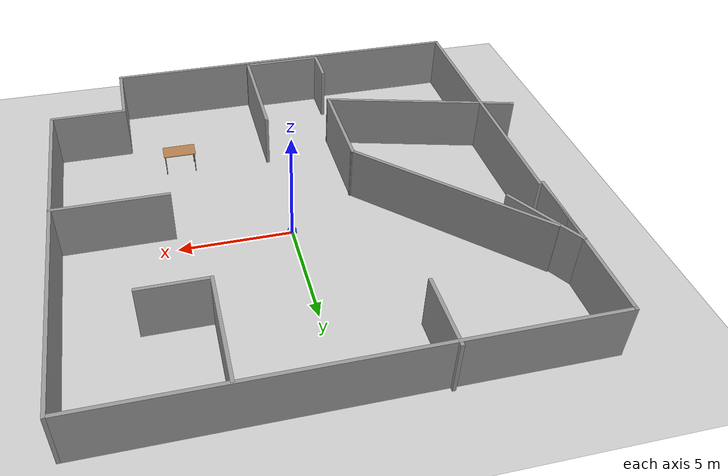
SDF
<sdf version="1.6">
 <world name="default">
  <light name="sun" type="directional">
   <pose>0 0 10 0 -0 0</pose>
   <diffuse>0.8 0.8 0.8 1</diffuse>
   <specular>0.2 0.2 0.2 1</specular>
   <attenuation>
    <range>1000</range>
    <constant>0.9</constant>
    <linear>0.01</linear>
    <quadratic>0.001</quadratic>
   </attenuation>
   <direction>-0.5 0.1 -0.9</direction>
  </light>
  <model name="ground_plane">
   <static>1</static>
   <link name="link">
    <collision name="collision">
     <geometry><plane><normal>0 0 1</normal><size>100 100</size></plane></geometry>
     <surface><friction><ode><mu>100</mu><mu2>50</mu2></ode></friction></surface>
    </collision>
    <visual name="visual">
     <cast_shadows>0</cast_shadows>
     <geometry><plane><normal>0 0 1</normal><size>100 100</size></plane></geometry>
     <material>
      <script><uri>file://media/materials/scripts/gazebo.material</uri><name>Gazebo/Grey</name></script>
     </material>
    </visual>
   </link>
  </model>
  <gravity>0 0 -9.8</gravity>
  <magnetic_field>6e-06 2.3e-05 -4.2e-05</magnetic_field>
  <atmosphere type="adiabatic"/>
  <physics name="default_physics" default="0" type="ode">
   <max_step_size>0.001</max_step_size>
   <real_time_factor>1</real_time_factor>
   <real_time_update_rate>1000</real_time_update_rate>
  </physics>
  <scene><ambient>0.4 0.4 0.4 1</ambient><background>0.7 0.7 0.7 1</background><shadows>1</shadows></scene>
  <spherical_coordinates>
   <surface_model>EARTH_WGS84</surface_model>
   <latitude_deg>0</latitude_deg>
   <longitude_deg>0</longitude_deg>
   <elevation>0</elevation>
   <heading_deg>0</heading_deg>
  </spherical_coordinates>
  <model name="table">
   <static>1</static>
   <link name="link">
    <collision name="surface">
     <pose>0 0 1 0 -0 0</pose>
     <geometry><box><size>1.5 0.8 0.03</size></box></geometry>
     <surface><friction><ode><mu>0.6</mu><mu2>0.6</mu2></ode></friction></surface>
    </collision>
    <visual name="visual1">
     <pose>0 0 1 0 -0 0</pose>
     <geometry><box><size>1.5 0.8 0.03</size></box></geometry>
     <material>
      <script><uri>file://media/materials/scripts/gazebo.material</uri><name>Gazebo/Wood</name></script>
     </material>
    </visual>
    <collision name="front_left_leg">
     <pose>0.68 0.38 0.5 0 -0 0</pose>
     <geometry><cylinder><radius>0.02</radius><length>1</length></cylinder></geometry>
    </collision>
    <visual name="front_left_leg">
     <pose>0.68 0.38 0.5 0 -0 0</pose>
     <geometry><cylinder><radius>0.02</radius><length>1</length></cylinder></geometry>
     <material>
      <script><uri>file://media/materials/scripts/gazebo.material</uri><name>Gazebo/Grey</name></script>
     </material>
    </visual>
    <collision name="front_right_leg">
     <pose>0.68 -0.38 0.5 0 -0 0</pose>
     <geometry><cylinder><radius>0.02</radius><length>1</length></cylinder></geometry>
    </collision>
    <visual name="front_right_leg">
     <pose>0.68 -0.38 0.5 0 -0 0</pose>
     <geometry><cylinder><radius>0.02</radius><length>1</length></cylinder></geometry>
     <material>
      <script><uri>file://media/materials/scripts/gazebo.material</uri><name>Gazebo/Grey</name></script>
     </material>
    </visual>
    <collision name="back_right_leg">
     <pose>-0.68 -0.38 0.5 0 -0 0</pose>
     <geometry><cylinder><radius>0.02</radius><length>1</length></cylinder></geometry>
    </collision>
    <visual name="back_right_leg">
     <pose>-0.68 -0.38 0.5 0 -0 0</pose>
     <geometry><cylinder><radius>0.02</radius><length>1</length></cylinder></geometry>
     <material>
      <script><uri>file://media/materials/scripts/gazebo.material</uri><name>Gazebo/Grey</name></script>
     </material>
    </visual>
    <collision name="back_left_leg">
     <pose>-0.68 0.38 0.5 0 -0 0</pose>
     <geometry><cylinder><radius>0.02</radius><length>1</length></cylinder></geometry>
    </collision>
    <visual name="back_left_leg">
     <pose>-0.68 0.38 0.5 0 -0 0</pose>
     <geometry><cylinder><radius>0.02</radius><length>1</length></cylinder></geometry>
     <material>
      <script><uri>file://media/materials/scripts/gazebo.material</uri><name>Gazebo/Grey</name></script>
     </material>
    </visual>
   </link>
   <pose>4.25244 -5.8048 0 0 -0 0</pose>
  </model>
  <model name="surrounded_ground_1">
   <pose>-7.47511 -0.87758 0 0 -0 0</pose>
   <link name="Wall_19">
    <collision name="Wall_19_Collision">
     <geometry><box><size>9.5 0.15 2.5</size></box></geometry>
     <pose>0 0 1.25 0 -0 0</pose>
    </collision>
    <visual name="Wall_19_Visual">
     <pose>0 0 1.25 0 -0 0</pose>
     <geometry><box><size>9.5 0.15 2.5</size></box></geometry>
     <material>
      <script><uri>file://media/materials/scripts/gazebo.material</uri><name>Gazebo/Grey</name></script>
      <ambient>1 1 1 1</ambient>
     </material>
     <meta><layer>0</layer></meta>
    </visual>
    <pose>0.961392 2.16789 0 0 -0 2.35619</pose>
   </link>
   <link name="Wall_21">
    <collision name="Wall_21_Collision">
     <geometry><box><size>4.5 0.15 2.5</size></box></geometry>
     <pose>0 0 1.25 0 -0 0</pose>
    </collision>
    <visual name="Wall_21_Visual">
     <pose>0 0 1.25 0 -0 0</pose>
     <geometry><box><size>4.5 0.15 2.5</size></box></geometry>
     <material>
      <script><uri>file://media/materials/scripts/gazebo.material</uri><name>Gazebo/Grey</name></script>
      <ambient>1 1 1 1</ambient>
     </material>
     <meta><layer>0</layer></meta>
    </visual>
    <pose>4.26712 -3.31283 0 0 -0 -1.5708</pose>
   </link>
   <link name="Wall_22">
    <collision name="Wall_22_Collision">
     <geometry><box><size>9 0.15 2.5</size></box></geometry>
     <pose>0 0 1.25 0 -0 0</pose>
    </collision>
    <visual name="Wall_22_Visual">
     <pose>0 0 1.25 0 -0 0</pose>
     <geometry><box><size>9 0.15 2.5</size></box></geometry>
     <material>
      <script><uri>file://media/materials/scripts/gazebo.material</uri><name>Gazebo/Grey</name></script>
      <ambient>1 1 1 1</ambient>
     </material>
     <meta><layer>0</layer></meta>
    </visual>
    <pose>-0.007105 -4.34256 0 0 -0 2.87979</pose>
   </link>
   <static>1</static>
  </model>
  <model name="mbot">
   <link name="base_footprint">
    <inertial>
     <pose>0 0 0.119545 0 -0 0</pose>
     <mass>1.1</mass>
     <inertia><ixx>0.0231356</ixx><ixy>0</ixy><ixz>0</ixz><iyy>0.0231356</iyy><iyz>0</iyz><izz>0.03</izz></inertia>
    </inertial>
    <collision name="base_footprint_fixed_joint_lump__base_link_collision">
     <pose>0 0 0.11 0 -0 0</pose>
     <geometry><cylinder><length>0.16</length><radius>0.2</radius></cylinder></geometry>
    </collision>
    <collision name="base_footprint_fixed_joint_lump__laser_link_collision_1">
     <pose>0 0 0.215 0 -0 0</pose>
     <geometry><cylinder><length>0.06</length><radius>0.05</radius></cylinder></geometry>
    </collision>
    <visual name="base_footprint_visual">
     <geometry><box><size>0.001 0.001 0.001</size></box></geometry>
     <material><script><uri>__default__</uri><name>__default__</name></script></material>
    </visual>
    <visual name="base_footprint_fixed_joint_lump__base_link_visual_1">
     <pose>0 0 0.11 0 -0 0</pose>
     <geometry><cylinder><length>0.16</length><radius>0.2</radius></cylinder></geometry>
     <material>
      <script><name>Gazebo/Blue</name><uri>file://media/materials/scripts/gazebo.material</uri></script>
     </material>
    </visual>
    <visual name="base_footprint_fixed_joint_lump__laser_link_visual_2">
     <pose>0 0 0.215 0 -0 0</pose>
     <geometry><cylinder><length>0.05</length><radius>0.05</radius></cylinder></geometry>
     <material>
      <script><name>Gazebo/Black</name><uri>file://media/materials/scripts/gazebo.material</uri></script>
     </material>
    </visual>
    <sensor name="rplidar" type="ray">
     <visualize>0</visualize>
     <update_rate>5.5</update_rate>
     <ray>
      <scan>
       <horizontal>
        <samples>360</samples>
        <resolution>1</resolution>
        <min_angle>-3</min_angle>
        <max_angle>3</max_angle>
       </horizontal>
       <vertical><samples>1</samples><min_angle>0</min_angle><max_angle>0</max_angle></vertical>
      </scan>
      <range><min>0.1</min><max>6</max><resolution>0.01</resolution></range>
      <noise><type>gaussian</type><mean>0</mean><stddev>0.01</stddev></noise>
     </ray>
     <plugin name="gazebo_rplidar" filename="libgazebo_ros_laser.so">
      <topicName>/scan</topicName>
      <frameName>laser_link</frameName>
      <robotNamespace>/</robotNamespace>
     </plugin>
     <pose>0 0 0.215 0 -0 0</pose>
    </sensor>
   </link>
   <link name="back_caster_link">
    <pose>0.18 0 0.015 0 -0 0</pose>
    <inertial>
     <mass>0.2</mass>
     <inertia><ixx>1.8e-05</ixx><ixy>0</ixy><ixz>0</ixz><iyy>1.8e-05</iyy><iyz>0</iyz><izz>1.8e-05</izz></inertia>
    </inertial>
    <collision name="back_caster_link_collision">
     <geometry><sphere><radius>0.015</radius></sphere></geometry>
    </collision>
    <visual name="back_caster_link_visual">
     <geometry><sphere><radius>0.015</radius></sphere></geometry>
     <material>
      <script><name>Gazebo/Black</name><uri>file://media/materials/scripts/gazebo.material</uri></script>
     </material>
    </visual>
   </link>
   <joint name="back_caster_joint" type="revolute">
    <child>back_caster_link</child>
    <parent>base_footprint</parent>
    <axis>
     <xyz>0 1 0</xyz>
     <limit><lower>-1e+16</lower><upper>1e+16</upper></limit>
     <dynamics><spring_reference>0</spring_reference><spring_stiffness>0</spring_stiffness></dynamics>
     <use_parent_model_frame>1</use_parent_model_frame>
    </axis>
   </joint>
   <link name="front_caster_link">
    <pose>-0.18 0 0.015 0 -0 0</pose>
    <inertial>
     <mass>0.2</mass>
     <inertia><ixx>1.8e-05</ixx><ixy>0</ixy><ixz>0</ixz><iyy>1.8e-05</iyy><iyz>0</iyz><izz>1.8e-05</izz></inertia>
    </inertial>
    <collision name="front_caster_link_collision">
     <geometry><sphere><radius>0.015</radius></sphere></geometry>
    </collision>
    <visual name="front_caster_link_visual">
     <geometry><sphere><radius>0.015</radius></sphere></geometry>
     <material>
      <script><name>Gazebo/Black</name><uri>file://media/materials/scripts/gazebo.material</uri></script>
     </material>
    </visual>
   </link>
   <joint name="front_caster_joint" type="revolute">
    <child>front_caster_link</child>
    <parent>base_footprint</parent>
    <axis>
     <xyz>0 1 0</xyz>
     <limit><lower>-1e+16</lower><upper>1e+16</upper></limit>
     <dynamics><spring_reference>0</spring_reference><spring_stiffness>0</spring_stiffness></dynamics>
     <use_parent_model_frame>1</use_parent_model_frame>
    </axis>
   </joint>
   <link name="left_wheel_link">
    <pose>0 0.19 0.06 0 -0 0</pose>
    <inertial>
     <mass>0.2</mass>
     <inertia>
      <ixx>0.000190417</ixx>
      <ixy>0</ixy>
      <ixz>0</ixz>
      <iyy>0.000190417</iyy>
      <iyz>0</iyz>
      <izz>0.00036</izz>
     </inertia>
    </inertial>
    <collision name="left_wheel_link_collision">
     <pose>0 0 0 1.5708 -0 0</pose>
     <geometry><cylinder><length>0.025</length><radius>0.06</radius></cylinder></geometry>
    </collision>
    <visual name="left_wheel_link_visual">
     <pose>0 0 0 1.5708 -0 0</pose>
     <geometry><cylinder><length>0.025</length><radius>0.06</radius></cylinder></geometry>
     <material>
      <script><name>Gazebo/Gray</name><uri>file://media/materials/scripts/gazebo.material</uri></script>
     </material>
    </visual>
   </link>
   <joint name="left_wheel_joint" type="revolute">
    <child>left_wheel_link</child>
    <parent>base_footprint</parent>
    <axis>
     <xyz>0 1 0</xyz>
     <limit><lower>-1e+16</lower><upper>1e+16</upper></limit>
     <dynamics><spring_reference>0</spring_reference><spring_stiffness>0</spring_stiffness></dynamics>
     <use_parent_model_frame>1</use_parent_model_frame>
    </axis>
   </joint>
   <link name="right_wheel_link">
    <pose>0 -0.19 0.06 0 -0 0</pose>
    <inertial>
     <mass>0.2</mass>
     <inertia>
      <ixx>0.000190417</ixx>
      <ixy>0</ixy>
      <ixz>0</ixz>
      <iyy>0.000190417</iyy>
      <iyz>0</iyz>
      <izz>0.00036</izz>
     </inertia>
    </inertial>
    <collision name="right_wheel_link_collision">
     <pose>0 0 0 1.5708 -0 0</pose>
     <geometry><cylinder><length>0.025</length><radius>0.06</radius></cylinder></geometry>
    </collision>
    <visual name="right_wheel_link_visual">
     <pose>0 0 0 1.5708 -0 0</pose>
     <geometry><cylinder><length>0.025</length><radius>0.06</radius></cylinder></geometry>
     <material>
      <script><name>Gazebo/Gray</name><uri>file://media/materials/scripts/gazebo.material</uri></script>
     </material>
    </visual>
   </link>
   <joint name="right_wheel_joint" type="revolute">
    <child>right_wheel_link</child>
    <parent>base_footprint</parent>
    <axis>
     <xyz>0 1 0</xyz>
     <limit><lower>-1e+16</lower><upper>1e+16</upper></limit>
     <dynamics><spring_reference>0</spring_reference><spring_stiffness>0</spring_stiffness></dynamics>
     <use_parent_model_frame>1</use_parent_model_frame>
    </axis>
   </joint>
   <static>0</static>
   <plugin name="differential_drive_controller" filename="libgazebo_ros_diff_drive.so">
    <rosDebugLevel>Debug</rosDebugLevel>
    <publishWheelTF>1</publishWheelTF>
    <robotNamespace>/</robotNamespace>
    <publishTf>1</publishTf>
    <publishWheelJointState>1</publishWheelJointState>
    <alwaysOn>1</alwaysOn>
    <updateRate>100.0</updateRate>
    <legacyMode>1</legacyMode>
    <leftJoint>left_wheel_joint</leftJoint>
    <rightJoint>right_wheel_joint</rightJoint>
    <wheelSeparation>0.38</wheelSeparation>
    <wheelDiameter>0.12</wheelDiameter>
    <broadcastTF>1</broadcastTF>
    <wheelTorque>30</wheelTorque>
    <wheelAcceleration>1.8</wheelAcceleration>
    <commandTopic>cmd_vel</commandTopic>
    <odometryFrame>odom</odometryFrame>
    <odometryTopic>odom</odometryTopic>
    <robotBaseFrame>base_footprint</robotBaseFrame>
   </plugin>
   <pose>-0.001218 0.002399 0 0 -0 4e-05</pose>
  </model>
  <model name="small_world">
   <pose>-0.291479 -0.611603 0 0 -0 0</pose>
   <link name="Wall_16">
    <collision name="Wall_16_Collision">
     <geometry><box><size>12.75 0.15 2.5</size></box></geometry>
     <pose>0 0 1.25 0 -0 0</pose>
    </collision>
    <visual name="Wall_16_Visual">
     <pose>0 0 1.25 0 -0 0</pose>
     <geometry><box><size>12.75 0.15 2.5</size></box></geometry>
     <material>
      <script><uri>file://media/materials/scripts/gazebo.material</uri><name>Gazebo/Grey</name></script>
      <ambient>1 1 1 1</ambient>
     </material>
     <meta><layer>0</layer></meta>
    </visual>
    <pose>-10.0149 -3.7518 0 0 -0 -1.5708</pose>
   </link>
   <link name="Wall_17">
    <collision name="Wall_17_Collision">
     <geometry><box><size>17 0.15 2.5</size></box></geometry>
     <pose>0 0 1.25 0 -0 0</pose>
    </collision>
    <visual name="Wall_17_Visual">
     <pose>0 0 1.25 0 -0 0</pose>
     <geometry><box><size>17 0.15 2.5</size></box></geometry>
     <material>
      <script><uri>file://media/materials/scripts/gazebo.material</uri><name>Gazebo/Grey</name></script>
      <ambient>1 1 1 1</ambient>
     </material>
     <meta><layer>0</layer></meta>
    </visual>
    <pose>-1.58988 -10.0518 0 0 -0 0</pose>
   </link>
   <link name="Wall_18">
    <collision name="Wall_18_Collision">
     <geometry><box><size>3.25 0.15 2.5</size></box></geometry>
     <pose>0 0 1.25 0 -0 0</pose>
    </collision>
    <visual name="Wall_18_Visual">
     <pose>0 0 1.25 0 -0 0</pose>
     <geometry><box><size>3.25 0.15 2.5</size></box></geometry>
     <material>
      <script><uri>file://media/materials/scripts/gazebo.material</uri><name>Gazebo/Grey</name></script>
      <ambient>1 1 1 1</ambient>
     </material>
     <meta><layer>0</layer></meta>
    </visual>
    <pose>6.83512 -8.5018 0 0 -0 1.5708</pose>
   </link>
   <link name="Wall_19">
    <collision name="Wall_19_Collision">
     <geometry><box><size>3.5 0.15 2.5</size></box></geometry>
     <pose>0 0 1.25 0 -0 0</pose>
    </collision>
    <visual name="Wall_19_Visual">
     <pose>0 0 1.25 0 -0 0</pose>
     <geometry><box><size>3.5 0.15 2.5</size></box></geometry>
     <material>
      <script><uri>file://media/materials/scripts/gazebo.material</uri><name>Gazebo/Grey</name></script>
      <ambient>1 1 1 1</ambient>
     </material>
     <meta><layer>0</layer></meta>
    </visual>
    <pose>8.51013 -6.9518 0 0 -0 0</pose>
   </link>
   <link name="Wall_20">
    <collision name="Wall_20_Collision">
     <geometry><box><size>17 0.15 2.5</size></box></geometry>
     <pose>0 0 1.25 0 -0 0</pose>
    </collision>
    <visual name="Wall_20_Visual">
     <pose>0 0 1.25 0 -0 0</pose>
     <geometry><box><size>17 0.15 2.5</size></box></geometry>
     <material>
      <script><uri>file://media/materials/scripts/gazebo.material</uri><name>Gazebo/Grey</name></script>
      <ambient>1 1 1 1</ambient>
     </material>
     <meta><layer>0</layer></meta>
    </visual>
    <pose>10.1851 1.4732 0 0 -0 1.5708</pose>
   </link>
   <link name="Wall_21">
    <collision name="Wall_21_Collision">
     <geometry><box><size>20.5 0.15 2.5</size></box></geometry>
     <pose>0 0 1.25 0 -0 0</pose>
    </collision>
    <visual name="Wall_21_Visual">
     <pose>0 0 1.25 0 -0 0</pose>
     <geometry><box><size>20.5 0.15 2.5</size></box></geometry>
     <material>
      <script><uri>file://media/materials/scripts/gazebo.material</uri><name>Gazebo/Grey</name></script>
      <ambient>1 1 1 1</ambient>
     </material>
     <meta><layer>0</layer></meta>
    </visual>
    <pose>0.010124 9.8982 0 0 -0 3.14159</pose>
   </link>
   <link name="Wall_22">
    <collision name="Wall_22_Collision">
     <geometry><box><size>7.5 0.15 2.5</size></box></geometry>
     <pose>0 0 1.25 0 -0 0</pose>
    </collision>
    <visual name="Wall_22_Visual">
     <pose>0 0 1.25 0 -0 0</pose>
     <geometry><box><size>7.5 0.15 2.5</size></box></geometry>
     <material>
      <script><uri>file://media/materials/scripts/gazebo.material</uri><name>Gazebo/Grey</name></script>
      <ambient>1 1 1 1</ambient>
     </material>
     <meta><layer>0</layer></meta>
    </visual>
    <pose>-10.1649 6.2232 0 0 -0 -1.5708</pose>
   </link>
   <link name="Wall_23">
    <collision name="Wall_23_Collision">
     <geometry><box><size>3.75 0.15 2.5</size></box></geometry>
     <pose>0 0 1.25 0 -0 0</pose>
    </collision>
    <visual name="Wall_23_Visual">
     <pose>0 0 1.25 0 -0 0</pose>
     <geometry><box><size>3.75 0.15 2.5</size></box></geometry>
     <material>
      <script><uri>file://media/materials/scripts/gazebo.material</uri><name>Gazebo/Grey</name></script>
      <ambient>1 1 1 1</ambient>
     </material>
     <meta><layer>0</layer></meta>
    </visual>
    <pose>-10.1649 4.3482 0 0 -0 1.5708</pose>
   </link>
   <link name="Wall_24">
    <collision name="Wall_24_Collision">
     <geometry><box><size>3.75 0.15 2.5</size></box></geometry>
     <pose>0 0 1.25 0 -0 0</pose>
    </collision>
    <visual name="Wall_24_Visual">
     <pose>0 0 1.25 0 -0 0</pose>
     <geometry><box><size>3.75 0.15 2.5</size></box></geometry>
     <material>
      <script><uri>file://media/materials/scripts/gazebo.material</uri><name>Gazebo/Grey</name></script>
      <ambient>1 1 1 1</ambient>
     </material>
     <meta><layer>0</layer></meta>
    </visual>
    <pose>-9.26488 4.58935 0 0 -0 -1.0472</pose>
   </link>
   <link name="Wall_27">
    <collision name="Wall_27_Collision">
     <geometry><box><size>5 0.15 2.5</size></box></geometry>
     <pose>0 0 1.25 0 -0 0</pose>
    </collision>
    <visual name="Wall_27_Visual">
     <pose>0 0 1.25 0 -0 0</pose>
     <geometry><box><size>5 0.15 2.5</size></box></geometry>
     <material>
      <script><uri>file://media/materials/scripts/gazebo.material</uri><name>Gazebo/Grey</name></script>
      <ambient>1 1 1 1</ambient>
     </material>
     <meta><layer>0</layer></meta>
    </visual>
    <pose>4.25227 7.46406 0 0 -0 -1.5708</pose>
   </link>
   <link name="Wall_28">
    <collision name="Wall_28_Collision">
     <geometry><box><size>3 0.15 2.5</size></box></geometry>
     <pose>0 0 1.25 0 -0 0</pose>
    </collision>
    <visual name="Wall_28_Visual">
     <pose>0 0 1.25 0 -0 0</pose>
     <geometry><box><size>3 0.15 2.5</size></box></geometry>
     <material>
      <script><uri>file://media/materials/scripts/gazebo.material</uri><name>Gazebo/Grey</name></script>
      <ambient>1 1 1 1</ambient>
     </material>
     <meta><layer>0</layer></meta>
    </visual>
    <pose>5.67727 5.03906 0 0 -0 0</pose>
   </link>
   <link name="Wall_31">
    <collision name="Wall_31_Collision">
     <geometry><box><size>5 0.15 2.5</size></box></geometry>
     <pose>0 0 1.25 0 -0 0</pose>
    </collision>
    <visual name="Wall_31_Visual">
     <pose>0 0 1.25 0 -0 0</pose>
     <geometry><box><size>5 0.15 2.5</size></box></geometry>
     <material>
      <script><uri>file://media/materials/scripts/gazebo.material</uri><name>Gazebo/Grey</name></script>
      <ambient>1 1 1 1</ambient>
     </material>
     <meta><layer>0</layer></meta>
    </visual>
    <pose>7.76733 -0.200896 0 0 -0 3.14159</pose>
   </link>
   <link name="Wall_35">
    <collision name="Wall_35_Collision">
     <geometry><box><size>5.25 0.15 2.5</size></box></geometry>
     <pose>0 0 1.25 0 -0 0</pose>
    </collision>
    <visual name="Wall_35_Visual">
     <pose>0 0 1.25 0 -0 0</pose>
     <geometry><box><size>5.25 0.15 2.5</size></box></geometry>
     <material>
      <script><uri>file://media/materials/scripts/gazebo.material</uri><name>Gazebo/Grey</name></script>
      <ambient>1 1 1 1</ambient>
     </material>
     <meta><layer>0</layer></meta>
    </visual>
    <pose>0.346483 -7.30765 0 0 -0 -1.5708</pose>
   </link>
   <link name="Wall_36">
    <collision name="Wall_36_Collision">
     <geometry><box><size>3.75 0.15 2.5</size></box></geometry>
     <pose>0 0 1.25 0 -0 0</pose>
    </collision>
    <visual name="Wall_36_Visual">
     <pose>0 0 1.25 0 -0 0</pose>
     <geometry><box><size>3.75 0.15 2.5</size></box></geometry>
     <material>
      <script><uri>file://media/materials/scripts/gazebo.material</uri><name>Gazebo/Grey</name></script>
      <ambient>1 1 1 1</ambient>
     </material>
     <meta><layer>0</layer></meta>
    </visual>
    <pose>-1.45352 -9.85765 0 0 -0 3.14159</pose>
   </link>
   <link name="Wall_37">
    <collision name="Wall_37_Collision">
     <geometry><box><size>1.75 0.15 2.5</size></box></geometry>
     <pose>0 0 1.25 0 -0 0</pose>
    </collision>
    <visual name="Wall_37_Visual">
     <pose>0 0 1.25 0 -0 0</pose>
     <geometry><box><size>1.75 0.15 2.5</size></box></geometry>
     <material>
      <script><uri>file://media/materials/scripts/gazebo.material</uri><name>Gazebo/Grey</name></script>
      <ambient>1 1 1 1</ambient>
     </material>
     <meta><layer>0</layer></meta>
    </visual>
    <pose>-3.25352 -9.05765 0 0 -0 1.5708</pose>
   </link>
   <link name="Wall_39">
    <collision name="Wall_39_Collision">
     <geometry><box><size>3.25 0.15 2.5</size></box></geometry>
     <pose>0 0 1.25 0 -0 0</pose>
    </collision>
    <visual name="Wall_39_Visual">
     <pose>0 0 1.25 0 -0 0</pose>
     <geometry><box><size>3.25 0.15 2.5</size></box></geometry>
     <material>
      <script><uri>file://media/materials/scripts/gazebo.material</uri><name>Gazebo/Grey</name></script>
      <ambient>1 1 1 1</ambient>
     </material>
     <meta><layer>0</layer></meta>
    </visual>
    <pose>-3.55931 8.5018 0 0 -0 -1.5708</pose>
   </link>
   <static>1</static>
  </model>
 </world>
</sdf>
